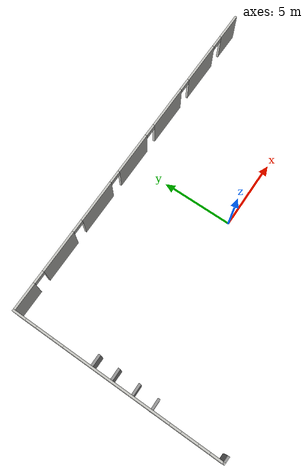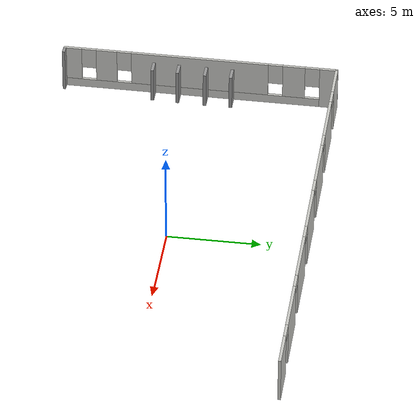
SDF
<sdf version="1.6">
 <model name="CV1_giardino2">
  <link name="Door_1">
   <pose>-12.2685 1.79069 0 0 -0 0</pose>
   <visual name="Door_1_Visual">
    <pose>0 0 1 0 -0 0</pose>
    <geometry><box><size>0.9 0.17 2</size></box></geometry>
    <material>
     <script><uri>file://media/materials/scripts/gazebo.material</uri><name>Gazebo/Grey</name></script>
     <ambient>0.3 0.3 0.3 1</ambient>
     <diffuse>0.7 0.7 0.7 1</diffuse>
     <specular>0.01 0.01 0.01 1</specular>
     <emissive>0 0 0 1</emissive>
    </material>
   </visual>
   <collision name="Door_1_Collision">
    <pose>0 0 1 0 -0 0</pose>
    <geometry><box><size>0.9 0.17 2</size></box></geometry>
    <surface>
     <friction>
      <ode><mu>1</mu><mu2>1</mu2><fdir1>0 0 0</fdir1><slip1>0</slip1><slip2>0</slip2></ode>
      <torsional>
       <coefficient>1</coefficient>
       <patch_radius>0</patch_radius>
       <surface_radius>0</surface_radius>
       <use_patch_radius>1</use_patch_radius>
       <ode><slip>0</slip></ode>
      </torsional>
     </friction>
     <bounce><restitution_coefficient>0</restitution_coefficient><threshold>1e+06</threshold></bounce>
     <contact>
      <collide_without_contact>0</collide_without_contact>
      <collide_without_contact_bitmask>1</collide_without_contact_bitmask>
      <collide_bitmask>1</collide_bitmask>
      <ode>
       <soft_cfm>0</soft_cfm>
       <soft_erp>0.2</soft_erp>
       <kp>1e+13</kp>
       <kd>1</kd>
       <max_vel>0.01</max_vel>
       <min_depth>0</min_depth>
      </ode>
      <bullet>
       <split_impulse>1</split_impulse>
       <split_impulse_penetration_threshold>-0.01</split_impulse_penetration_threshold>
       <soft_cfm>0</soft_cfm>
       <soft_erp>0.2</soft_erp>
       <kp>1e+13</kp>
       <kd>1</kd>
      </bullet>
     </contact>
    </surface>
   </collision>
  </link>
  <link name="Door_2">
   <pose>-12.2685 0.359125 0 0 -0 0</pose>
   <visual name="Door_2_Visual">
    <pose>0 0 1 0 -0 0</pose>
    <geometry><box><size>0.9 0.17 2</size></box></geometry>
    <material>
     <script><uri>file://media/materials/scripts/gazebo.material</uri><name>Gazebo/Grey</name></script>
     <ambient>0.3 0.3 0.3 1</ambient>
     <diffuse>0.7 0.7 0.7 1</diffuse>
     <specular>0.01 0.01 0.01 1</specular>
     <emissive>0 0 0 1</emissive>
    </material>
   </visual>
   <collision name="Door_2_Collision">
    <pose>0 0 1 0 -0 0</pose>
    <geometry><box><size>0.9 0.17 2</size></box></geometry>
    <surface>
     <friction>
      <ode><mu>1</mu><mu2>1</mu2><fdir1>0 0 0</fdir1><slip1>0</slip1><slip2>0</slip2></ode>
      <torsional>
       <coefficient>1</coefficient>
       <patch_radius>0</patch_radius>
       <surface_radius>0</surface_radius>
       <use_patch_radius>1</use_patch_radius>
       <ode><slip>0</slip></ode>
      </torsional>
     </friction>
     <bounce><restitution_coefficient>0</restitution_coefficient><threshold>1e+06</threshold></bounce>
     <contact>
      <collide_without_contact>0</collide_without_contact>
      <collide_without_contact_bitmask>1</collide_without_contact_bitmask>
      <collide_bitmask>1</collide_bitmask>
      <ode>
       <soft_cfm>0</soft_cfm>
       <soft_erp>0.2</soft_erp>
       <kp>1e+13</kp>
       <kd>1</kd>
       <max_vel>0.01</max_vel>
       <min_depth>0</min_depth>
      </ode>
      <bullet>
       <split_impulse>1</split_impulse>
       <split_impulse_penetration_threshold>-0.01</split_impulse_penetration_threshold>
       <soft_cfm>0</soft_cfm>
       <soft_erp>0.2</soft_erp>
       <kp>1e+13</kp>
       <kd>1</kd>
      </bullet>
     </contact>
    </surface>
   </collision>
  </link>
  <link name="Door_3">
   <pose>-12.296 -1.14905 0 0 -0 0</pose>
   <visual name="Door_3_Visual">
    <pose>0 0 1 0 -0 0</pose>
    <geometry><box><size>0.9 0.17 2</size></box></geometry>
    <material>
     <script><uri>file://media/materials/scripts/gazebo.material</uri><name>Gazebo/Grey</name></script>
     <ambient>0.3 0.3 0.3 1</ambient>
     <diffuse>0.7 0.7 0.7 1</diffuse>
     <specular>0.01 0.01 0.01 1</specular>
     <emissive>0 0 0 1</emissive>
    </material>
   </visual>
   <collision name="Door_3_Collision">
    <pose>0 0 1 0 -0 0</pose>
    <geometry><box><size>0.9 0.17 2</size></box></geometry>
    <surface>
     <friction>
      <ode><mu>1</mu><mu2>1</mu2><fdir1>0 0 0</fdir1><slip1>0</slip1><slip2>0</slip2></ode>
      <torsional>
       <coefficient>1</coefficient>
       <patch_radius>0</patch_radius>
       <surface_radius>0</surface_radius>
       <use_patch_radius>1</use_patch_radius>
       <ode><slip>0</slip></ode>
      </torsional>
     </friction>
     <bounce><restitution_coefficient>0</restitution_coefficient><threshold>1e+06</threshold></bounce>
     <contact>
      <collide_without_contact>0</collide_without_contact>
      <collide_without_contact_bitmask>1</collide_without_contact_bitmask>
      <collide_bitmask>1</collide_bitmask>
      <ode>
       <soft_cfm>0</soft_cfm>
       <soft_erp>0.2</soft_erp>
       <kp>1e+13</kp>
       <kd>1</kd>
       <max_vel>0.01</max_vel>
       <min_depth>0</min_depth>
      </ode>
      <bullet>
       <split_impulse>1</split_impulse>
       <split_impulse_penetration_threshold>-0.01</split_impulse_penetration_threshold>
       <soft_cfm>0</soft_cfm>
       <soft_erp>0.2</soft_erp>
       <kp>1e+13</kp>
       <kd>1</kd>
      </bullet>
     </contact>
    </surface>
   </collision>
  </link>
  <link name="Door_4">
   <pose>-12.3517 -2.54114 0 0 -0 0</pose>
   <visual name="Door_4_Visual">
    <pose>0 0 1 0 -0 0</pose>
    <geometry><box><size>0.9 0.17 2</size></box></geometry>
    <material>
     <script><uri>file://media/materials/scripts/gazebo.material</uri><name>Gazebo/Grey</name></script>
     <ambient>0.3 0.3 0.3 1</ambient>
     <diffuse>0.7 0.7 0.7 1</diffuse>
     <specular>0.01 0.01 0.01 1</specular>
     <emissive>0 0 0 1</emissive>
    </material>
   </visual>
   <collision name="Door_4_Collision">
    <pose>0 0 1 0 -0 0</pose>
    <geometry><box><size>0.9 0.17 2</size></box></geometry>
    <surface>
     <friction>
      <ode><mu>1</mu><mu2>1</mu2><fdir1>0 0 0</fdir1><slip1>0</slip1><slip2>0</slip2></ode>
      <torsional>
       <coefficient>1</coefficient>
       <patch_radius>0</patch_radius>
       <surface_radius>0</surface_radius>
       <use_patch_radius>1</use_patch_radius>
       <ode><slip>0</slip></ode>
      </torsional>
     </friction>
     <bounce><restitution_coefficient>0</restitution_coefficient><threshold>1e+06</threshold></bounce>
     <contact>
      <collide_without_contact>0</collide_without_contact>
      <collide_without_contact_bitmask>1</collide_without_contact_bitmask>
      <collide_bitmask>1</collide_bitmask>
      <ode>
       <soft_cfm>0</soft_cfm>
       <soft_erp>0.2</soft_erp>
       <kp>1e+13</kp>
       <kd>1</kd>
       <max_vel>0.01</max_vel>
       <min_depth>0</min_depth>
      </ode>
      <bullet>
       <split_impulse>1</split_impulse>
       <split_impulse_penetration_threshold>-0.01</split_impulse_penetration_threshold>
       <soft_cfm>0</soft_cfm>
       <soft_erp>0.2</soft_erp>
       <kp>1e+13</kp>
       <kd>1</kd>
      </bullet>
     </contact>
    </surface>
   </collision>
  </link>
  <link name="Wall_0">
   <pose>-12.7005 0.009036 0 0 0 -1.57729</pose>
   <visual name="Wall_0_Visual_0">
    <pose>-7.07005 0 1.25 0 -0 0</pose>
    <geometry><box><size>0.999785 0.15 2.5</size></box></geometry>
    <material>
     <script><uri>file://media/materials/scripts/gazebo.material</uri><name>Gazebo/CeilingTiled</name></script>
     <ambient>1 1 1 1</ambient>
     <diffuse>1 1 1 1</diffuse>
     <specular>0 0 0 1</specular>
     <emissive>0 0 0 1</emissive>
    </material>
   </visual>
   <visual name="Wall_0_Visual_1">
    <pose>0.499892 0 0.25 0 -0 0</pose>
    <geometry><box><size>14.1401 0.15 0.5</size></box></geometry>
    <material>
     <script><uri>file://media/materials/scripts/gazebo.material</uri><name>Gazebo/CeilingTiled</name></script>
     <ambient>1 1 1 1</ambient>
     <diffuse>1 1 1 1</diffuse>
     <specular>0 0 0 1</specular>
     <emissive>0 0 0 1</emissive>
    </material>
   </visual>
   <visual name="Wall_0_Visual_2">
    <pose>-5.15824 0 1.5 0 -0 0</pose>
    <geometry><box><size>1.22384 0.15 2</size></box></geometry>
    <material>
     <script><uri>file://media/materials/scripts/gazebo.material</uri><name>Gazebo/CeilingTiled</name></script>
     <ambient>1 1 1 1</ambient>
     <diffuse>1 1 1 1</diffuse>
     <specular>0 0 0 1</specular>
     <emissive>0 0 0 1</emissive>
    </material>
   </visual>
   <visual name="Wall_0_Visual_3">
    <pose>0.034926 0 1.5 0 -0 0</pose>
    <geometry><box><size>7.56249 0.15 2</size></box></geometry>
    <material>
     <script><uri>file://media/materials/scripts/gazebo.material</uri><name>Gazebo/CeilingTiled</name></script>
     <ambient>1 1 1 1</ambient>
     <diffuse>1 1 1 1</diffuse>
     <specular>0 0 0 1</specular>
     <emissive>0 0 0 1</emissive>
    </material>
   </visual>
   <visual name="Wall_0_Visual_4">
    <pose>5.1919 0 1.5 0 -0 0</pose>
    <geometry><box><size>1.15146 0.15 2</size></box></geometry>
    <material>
     <script><uri>file://media/materials/scripts/gazebo.material</uri><name>Gazebo/CeilingTiled</name></script>
     <ambient>1 1 1 1</ambient>
     <diffuse>1 1 1 1</diffuse>
     <specular>0 0 0 1</specular>
     <emissive>0 0 0 1</emissive>
    </material>
   </visual>
   <visual name="Wall_0_Visual_5">
    <pose>7.06879 0 1.5 0 -0 0</pose>
    <geometry><box><size>1.00231 0.15 2</size></box></geometry>
    <material>
     <script><uri>file://media/materials/scripts/gazebo.material</uri><name>Gazebo/CeilingTiled</name></script>
     <ambient>1 1 1 1</ambient>
     <diffuse>1 1 1 1</diffuse>
     <specular>0 0 0 1</specular>
     <emissive>0 0 0 1</emissive>
    </material>
   </visual>
   <visual name="Wall_0_Visual_6">
    <pose>-6.17016 0 1.9 0 -0 0</pose>
    <geometry><box><size>0.8 0.15 1.2</size></box></geometry>
    <material>
     <script><uri>file://media/materials/scripts/gazebo.material</uri><name>Gazebo/CeilingTiled</name></script>
     <ambient>1 1 1 1</ambient>
     <diffuse>1 1 1 1</diffuse>
     <specular>0 0 0 1</specular>
     <emissive>0 0 0 1</emissive>
    </material>
   </visual>
   <visual name="Wall_0_Visual_7">
    <pose>-4.14632 0 1.9 0 -0 0</pose>
    <geometry><box><size>0.8 0.15 1.2</size></box></geometry>
    <material>
     <script><uri>file://media/materials/scripts/gazebo.material</uri><name>Gazebo/CeilingTiled</name></script>
     <ambient>1 1 1 1</ambient>
     <diffuse>1 1 1 1</diffuse>
     <specular>0 0 0 1</specular>
     <emissive>0 0 0 1</emissive>
    </material>
   </visual>
   <visual name="Wall_0_Visual_8">
    <pose>4.21617 0 1.9 0 -0 0</pose>
    <geometry><box><size>0.8 0.15 1.2</size></box></geometry>
    <material>
     <script><uri>file://media/materials/scripts/gazebo.material</uri><name>Gazebo/CeilingTiled</name></script>
     <ambient>1 1 1 1</ambient>
     <diffuse>1 1 1 1</diffuse>
     <specular>0 0 0 1</specular>
     <emissive>0 0 0 1</emissive>
    </material>
   </visual>
   <visual name="Wall_0_Visual_9">
    <pose>6.16763 0 1.9 0 -0 0</pose>
    <geometry><box><size>0.8 0.15 1.2</size></box></geometry>
    <material>
     <script><uri>file://media/materials/scripts/gazebo.material</uri><name>Gazebo/CeilingTiled</name></script>
     <ambient>1 1 1 1</ambient>
     <diffuse>1 1 1 1</diffuse>
     <specular>0 0 0 1</specular>
     <emissive>0 0 0 1</emissive>
    </material>
   </visual>
   <collision name="Wall_0_Collision_0">
    <pose>-7.07005 0 1.25 0 -0 0</pose>
    <geometry><box><size>0.999785 0.15 2.5</size></box></geometry>
    <surface>
     <friction>
      <ode><mu>1</mu><mu2>1</mu2><fdir1>0 0 0</fdir1><slip1>0</slip1><slip2>0</slip2></ode>
      <torsional>
       <coefficient>1</coefficient>
       <patch_radius>0</patch_radius>
       <surface_radius>0</surface_radius>
       <use_patch_radius>1</use_patch_radius>
       <ode><slip>0</slip></ode>
      </torsional>
     </friction>
     <bounce><restitution_coefficient>0</restitution_coefficient><threshold>1e+06</threshold></bounce>
     <contact>
      <collide_without_contact>0</collide_without_contact>
      <collide_without_contact_bitmask>1</collide_without_contact_bitmask>
      <collide_bitmask>1</collide_bitmask>
      <ode>
       <soft_cfm>0</soft_cfm>
       <soft_erp>0.2</soft_erp>
       <kp>1e+13</kp>
       <kd>1</kd>
       <max_vel>0.01</max_vel>
       <min_depth>0</min_depth>
      </ode>
      <bullet>
       <split_impulse>1</split_impulse>
       <split_impulse_penetration_threshold>-0.01</split_impulse_penetration_threshold>
       <soft_cfm>0</soft_cfm>
       <soft_erp>0.2</soft_erp>
       <kp>1e+13</kp>
       <kd>1</kd>
      </bullet>
     </contact>
    </surface>
   </collision>
   <collision name="Wall_0_Collision_1">
    <pose>0.499892 0 0.25 0 -0 0</pose>
    <geometry><box><size>14.1401 0.15 0.5</size></box></geometry>
    <surface>
     <friction>
      <ode><mu>1</mu><mu2>1</mu2><fdir1>0 0 0</fdir1><slip1>0</slip1><slip2>0</slip2></ode>
      <torsional>
       <coefficient>1</coefficient>
       <patch_radius>0</patch_radius>
       <surface_radius>0</surface_radius>
       <use_patch_radius>1</use_patch_radius>
       <ode><slip>0</slip></ode>
      </torsional>
     </friction>
     <bounce><restitution_coefficient>0</restitution_coefficient><threshold>1e+06</threshold></bounce>
     <contact>
      <collide_without_contact>0</collide_without_contact>
      <collide_without_contact_bitmask>1</collide_without_contact_bitmask>
      <collide_bitmask>1</collide_bitmask>
      <ode>
       <soft_cfm>0</soft_cfm>
       <soft_erp>0.2</soft_erp>
       <kp>1e+13</kp>
       <kd>1</kd>
       <max_vel>0.01</max_vel>
       <min_depth>0</min_depth>
      </ode>
      <bullet>
       <split_impulse>1</split_impulse>
       <split_impulse_penetration_threshold>-0.01</split_impulse_penetration_threshold>
       <soft_cfm>0</soft_cfm>
       <soft_erp>0.2</soft_erp>
       <kp>1e+13</kp>
       <kd>1</kd>
      </bullet>
     </contact>
    </surface>
   </collision>
   <collision name="Wall_0_Collision_2">
    <pose>-5.15824 0 1.5 0 -0 0</pose>
    <geometry><box><size>1.22384 0.15 2</size></box></geometry>
    <surface>
     <friction>
      <ode><mu>1</mu><mu2>1</mu2><fdir1>0 0 0</fdir1><slip1>0</slip1><slip2>0</slip2></ode>
      <torsional>
       <coefficient>1</coefficient>
       <patch_radius>0</patch_radius>
       <surface_radius>0</surface_radius>
       <use_patch_radius>1</use_patch_radius>
       <ode><slip>0</slip></ode>
      </torsional>
     </friction>
     <bounce><restitution_coefficient>0</restitution_coefficient><threshold>1e+06</threshold></bounce>
     <contact>
      <collide_without_contact>0</collide_without_contact>
      <collide_without_contact_bitmask>1</collide_without_contact_bitmask>
      <collide_bitmask>1</collide_bitmask>
      <ode>
       <soft_cfm>0</soft_cfm>
       <soft_erp>0.2</soft_erp>
       <kp>1e+13</kp>
       <kd>1</kd>
       <max_vel>0.01</max_vel>
       <min_depth>0</min_depth>
      </ode>
      <bullet>
       <split_impulse>1</split_impulse>
       <split_impulse_penetration_threshold>-0.01</split_impulse_penetration_threshold>
       <soft_cfm>0</soft_cfm>
       <soft_erp>0.2</soft_erp>
       <kp>1e+13</kp>
       <kd>1</kd>
      </bullet>
     </contact>
    </surface>
   </collision>
   <collision name="Wall_0_Collision_3">
    <pose>0.034926 0 1.5 0 -0 0</pose>
    <geometry><box><size>7.56249 0.15 2</size></box></geometry>
    <surface>
     <friction>
      <ode><mu>1</mu><mu2>1</mu2><fdir1>0 0 0</fdir1><slip1>0</slip1><slip2>0</slip2></ode>
      <torsional>
       <coefficient>1</coefficient>
       <patch_radius>0</patch_radius>
       <surface_radius>0</surface_radius>
       <use_patch_radius>1</use_patch_radius>
       <ode><slip>0</slip></ode>
      </torsional>
     </friction>
     <bounce><restitution_coefficient>0</restitution_coefficient><threshold>1e+06</threshold></bounce>
     <contact>
      <collide_without_contact>0</collide_without_contact>
      <collide_without_contact_bitmask>1</collide_without_contact_bitmask>
      <collide_bitmask>1</collide_bitmask>
      <ode>
       <soft_cfm>0</soft_cfm>
       <soft_erp>0.2</soft_erp>
       <kp>1e+13</kp>
       <kd>1</kd>
       <max_vel>0.01</max_vel>
       <min_depth>0</min_depth>
      </ode>
      <bullet>
       <split_impulse>1</split_impulse>
       <split_impulse_penetration_threshold>-0.01</split_impulse_penetration_threshold>
       <soft_cfm>0</soft_cfm>
       <soft_erp>0.2</soft_erp>
       <kp>1e+13</kp>
       <kd>1</kd>
      </bullet>
     </contact>
    </surface>
   </collision>
   <collision name="Wall_0_Collision_5">
    <pose>7.06879 0 1.5 0 -0 0</pose>
    <geometry><box><size>1.00231 0.15 2</size></box></geometry>
    <surface>
     <friction>
      <ode><mu>1</mu><mu2>1</mu2><fdir1>0 0 0</fdir1><slip1>0</slip1><slip2>0</slip2></ode>
      <torsional>
       <coefficient>1</coefficient>
       <patch_radius>0</patch_radius>
       <surface_radius>0</surface_radius>
       <use_patch_radius>1</use_patch_radius>
       <ode><slip>0</slip></ode>
      </torsional>
     </friction>
     <bounce><restitution_coefficient>0</restitution_coefficient><threshold>1e+06</threshold></bounce>
     <contact>
      <collide_without_contact>0</collide_without_contact>
      <collide_without_contact_bitmask>1</collide_without_contact_bitmask>
      <collide_bitmask>1</collide_bitmask>
      <ode>
       <soft_cfm>0</soft_cfm>
       <soft_erp>0.2</soft_erp>
       <kp>1e+13</kp>
       <kd>1</kd>
       <max_vel>0.01</max_vel>
       <min_depth>0</min_depth>
      </ode>
      <bullet>
       <split_impulse>1</split_impulse>
       <split_impulse_penetration_threshold>-0.01</split_impulse_penetration_threshold>
       <soft_cfm>0</soft_cfm>
       <soft_erp>0.2</soft_erp>
       <kp>1e+13</kp>
       <kd>1</kd>
      </bullet>
     </contact>
    </surface>
   </collision>
   <collision name="Wall_0_Collision_4">
    <pose>5.1919 0 1.5 0 -0 0</pose>
    <geometry><box><size>1.15146 0.15 2</size></box></geometry>
    <surface>
     <friction>
      <ode><mu>1</mu><mu2>1</mu2><fdir1>0 0 0</fdir1><slip1>0</slip1><slip2>0</slip2></ode>
      <torsional>
       <coefficient>1</coefficient>
       <patch_radius>0</patch_radius>
       <surface_radius>0</surface_radius>
       <use_patch_radius>1</use_patch_radius>
       <ode><slip>0</slip></ode>
      </torsional>
     </friction>
     <bounce><restitution_coefficient>0</restitution_coefficient><threshold>1e+06</threshold></bounce>
     <contact>
      <collide_without_contact>0</collide_without_contact>
      <collide_without_contact_bitmask>1</collide_without_contact_bitmask>
      <collide_bitmask>1</collide_bitmask>
      <ode>
       <soft_cfm>0</soft_cfm>
       <soft_erp>0.2</soft_erp>
       <kp>1e+13</kp>
       <kd>1</kd>
       <max_vel>0.01</max_vel>
       <min_depth>0</min_depth>
      </ode>
      <bullet>
       <split_impulse>1</split_impulse>
       <split_impulse_penetration_threshold>-0.01</split_impulse_penetration_threshold>
       <soft_cfm>0</soft_cfm>
       <soft_erp>0.2</soft_erp>
       <kp>1e+13</kp>
       <kd>1</kd>
      </bullet>
     </contact>
    </surface>
   </collision>
   <collision name="Wall_0_Collision_6">
    <pose>-6.17016 0 1.9 0 -0 0</pose>
    <geometry><box><size>0.8 0.15 1.2</size></box></geometry>
    <surface>
     <friction>
      <ode><mu>1</mu><mu2>1</mu2><fdir1>0 0 0</fdir1><slip1>0</slip1><slip2>0</slip2></ode>
      <torsional>
       <coefficient>1</coefficient>
       <patch_radius>0</patch_radius>
       <surface_radius>0</surface_radius>
       <use_patch_radius>1</use_patch_radius>
       <ode><slip>0</slip></ode>
      </torsional>
     </friction>
     <bounce><restitution_coefficient>0</restitution_coefficient><threshold>1e+06</threshold></bounce>
     <contact>
      <collide_without_contact>0</collide_without_contact>
      <collide_without_contact_bitmask>1</collide_without_contact_bitmask>
      <collide_bitmask>1</collide_bitmask>
      <ode>
       <soft_cfm>0</soft_cfm>
       <soft_erp>0.2</soft_erp>
       <kp>1e+13</kp>
       <kd>1</kd>
       <max_vel>0.01</max_vel>
       <min_depth>0</min_depth>
      </ode>
      <bullet>
       <split_impulse>1</split_impulse>
       <split_impulse_penetration_threshold>-0.01</split_impulse_penetration_threshold>
       <soft_cfm>0</soft_cfm>
       <soft_erp>0.2</soft_erp>
       <kp>1e+13</kp>
       <kd>1</kd>
      </bullet>
     </contact>
    </surface>
   </collision>
   <collision name="Wall_0_Collision_7">
    <pose>-4.14632 0 1.9 0 -0 0</pose>
    <geometry><box><size>0.8 0.15 1.2</size></box></geometry>
    <surface>
     <friction>
      <ode><mu>1</mu><mu2>1</mu2><fdir1>0 0 0</fdir1><slip1>0</slip1><slip2>0</slip2></ode>
      <torsional>
       <coefficient>1</coefficient>
       <patch_radius>0</patch_radius>
       <surface_radius>0</surface_radius>
       <use_patch_radius>1</use_patch_radius>
       <ode><slip>0</slip></ode>
      </torsional>
     </friction>
     <bounce><restitution_coefficient>0</restitution_coefficient><threshold>1e+06</threshold></bounce>
     <contact>
      <collide_without_contact>0</collide_without_contact>
      <collide_without_contact_bitmask>1</collide_without_contact_bitmask>
      <collide_bitmask>1</collide_bitmask>
      <ode>
       <soft_cfm>0</soft_cfm>
       <soft_erp>0.2</soft_erp>
       <kp>1e+13</kp>
       <kd>1</kd>
       <max_vel>0.01</max_vel>
       <min_depth>0</min_depth>
      </ode>
      <bullet>
       <split_impulse>1</split_impulse>
       <split_impulse_penetration_threshold>-0.01</split_impulse_penetration_threshold>
       <soft_cfm>0</soft_cfm>
       <soft_erp>0.2</soft_erp>
       <kp>1e+13</kp>
       <kd>1</kd>
      </bullet>
     </contact>
    </surface>
   </collision>
   <collision name="Wall_0_Collision_9">
    <pose>6.16763 0 1.9 0 -0 0</pose>
    <geometry><box><size>0.8 0.15 1.2</size></box></geometry>
    <surface>
     <friction>
      <ode><mu>1</mu><mu2>1</mu2><fdir1>0 0 0</fdir1><slip1>0</slip1><slip2>0</slip2></ode>
      <torsional>
       <coefficient>1</coefficient>
       <patch_radius>0</patch_radius>
       <surface_radius>0</surface_radius>
       <use_patch_radius>1</use_patch_radius>
       <ode><slip>0</slip></ode>
      </torsional>
     </friction>
     <bounce><restitution_coefficient>0</restitution_coefficient><threshold>1e+06</threshold></bounce>
     <contact>
      <collide_without_contact>0</collide_without_contact>
      <collide_without_contact_bitmask>1</collide_without_contact_bitmask>
      <collide_bitmask>1</collide_bitmask>
      <ode>
       <soft_cfm>0</soft_cfm>
       <soft_erp>0.2</soft_erp>
       <kp>1e+13</kp>
       <kd>1</kd>
       <max_vel>0.01</max_vel>
       <min_depth>0</min_depth>
      </ode>
      <bullet>
       <split_impulse>1</split_impulse>
       <split_impulse_penetration_threshold>-0.01</split_impulse_penetration_threshold>
       <soft_cfm>0</soft_cfm>
       <soft_erp>0.2</soft_erp>
       <kp>1e+13</kp>
       <kd>1</kd>
      </bullet>
     </contact>
    </surface>
   </collision>
   <collision name="Wall_0_Collision_8">
    <pose>4.21617 0 1.9 0 -0 0</pose>
    <geometry><box><size>0.8 0.15 1.2</size></box></geometry>
    <surface>
     <friction>
      <ode><mu>1</mu><mu2>1</mu2><fdir1>0 0 0</fdir1><slip1>0</slip1><slip2>0</slip2></ode>
      <torsional>
       <coefficient>1</coefficient>
       <patch_radius>0</patch_radius>
       <surface_radius>0</surface_radius>
       <use_patch_radius>1</use_patch_radius>
       <ode><slip>0</slip></ode>
      </torsional>
     </friction>
     <bounce><restitution_coefficient>0</restitution_coefficient><threshold>1e+06</threshold></bounce>
     <contact>
      <collide_without_contact>0</collide_without_contact>
      <collide_without_contact_bitmask>1</collide_without_contact_bitmask>
      <collide_bitmask>1</collide_bitmask>
      <ode>
       <soft_cfm>0</soft_cfm>
       <soft_erp>0.2</soft_erp>
       <kp>1e+13</kp>
       <kd>1</kd>
       <max_vel>0.01</max_vel>
       <min_depth>0</min_depth>
      </ode>
      <bullet>
       <split_impulse>1</split_impulse>
       <split_impulse_penetration_threshold>-0.01</split_impulse_penetration_threshold>
       <soft_cfm>0</soft_cfm>
       <soft_erp>0.2</soft_erp>
       <kp>1e+13</kp>
       <kd>1</kd>
      </bullet>
     </contact>
    </surface>
   </collision>
  </link>
  <link name="Wall_10">
   <pose>-12.5486 -7.49359 0 0 -0 3.10252</pose>
   <visual name="Wall_10_Visual">
    <pose>0 0 1.25 0 -0 0</pose>
    <geometry><box><size>0.551485 0.15 2.5</size></box></geometry>
    <material>
     <script><uri>file://media/materials/scripts/gazebo.material</uri><name>Gazebo/Grey</name></script>
     <ambient>1 1 1 1</ambient>
     <diffuse>0.7 0.7 0.7 1</diffuse>
     <specular>0.01 0.01 0.01 1</specular>
     <emissive>0 0 0 1</emissive>
    </material>
   </visual>
   <collision name="Wall_10_Collision">
    <pose>0 0 1.25 0 -0 0</pose>
    <geometry><box><size>0.551485 0.15 2.5</size></box></geometry>
    <surface>
     <friction>
      <ode><mu>1</mu><mu2>1</mu2><fdir1>0 0 0</fdir1><slip1>0</slip1><slip2>0</slip2></ode>
      <torsional>
       <coefficient>1</coefficient>
       <patch_radius>0</patch_radius>
       <surface_radius>0</surface_radius>
       <use_patch_radius>1</use_patch_radius>
       <ode><slip>0</slip></ode>
      </torsional>
     </friction>
     <bounce><restitution_coefficient>0</restitution_coefficient><threshold>1e+06</threshold></bounce>
     <contact>
      <collide_without_contact>0</collide_without_contact>
      <collide_without_contact_bitmask>1</collide_without_contact_bitmask>
      <collide_bitmask>1</collide_bitmask>
      <ode>
       <soft_cfm>0</soft_cfm>
       <soft_erp>0.2</soft_erp>
       <kp>1e+13</kp>
       <kd>1</kd>
       <max_vel>0.01</max_vel>
       <min_depth>0</min_depth>
      </ode>
      <bullet>
       <split_impulse>1</split_impulse>
       <split_impulse_penetration_threshold>-0.01</split_impulse_penetration_threshold>
       <soft_cfm>0</soft_cfm>
       <soft_erp>0.2</soft_erp>
       <kp>1e+13</kp>
       <kd>1</kd>
      </bullet>
     </contact>
    </surface>
   </collision>
  </link>
  <link name="Wall_4">
   <pose>-0.226762 7.50382 0 0 -0 0</pose>
   <visual name="Wall_4_Visual_0">
    <pose>-11.4576 0 1.25 0 -0 0</pose>
    <geometry><box><size>2.08487 0.15 2.5</size></box></geometry>
    <material>
     <script><uri>file://media/materials/scripts/gazebo.material</uri><name>Gazebo/CeilingTiled</name></script>
     <ambient>1 1 1 1</ambient>
     <diffuse>1 1 1 1</diffuse>
     <specular>0 0 0 1</specular>
     <emissive>0 0 0 1</emissive>
    </material>
   </visual>
   <visual name="Wall_4_Visual_1">
    <pose>-7.98803 0 1.25 0 -0 0</pose>
    <geometry><box><size>3.0542 0.15 2.5</size></box></geometry>
    <material>
     <script><uri>file://media/materials/scripts/gazebo.material</uri><name>Gazebo/CeilingTiled</name></script>
     <ambient>1 1 1 1</ambient>
     <diffuse>1 1 1 1</diffuse>
     <specular>0 0 0 1</specular>
     <emissive>0 0 0 1</emissive>
    </material>
   </visual>
   <visual name="Wall_4_Visual_3">
    <pose>-0.033855 0 1.25 0 -0 0</pose>
    <geometry><box><size>3.07251 0.15 2.5</size></box></geometry>
    <material>
     <script><uri>file://media/materials/scripts/gazebo.material</uri><name>Gazebo/CeilingTiled</name></script>
     <ambient>1 1 1 1</ambient>
     <diffuse>1 1 1 1</diffuse>
     <specular>0 0 0 1</specular>
     <emissive>0 0 0 1</emissive>
    </material>
   </visual>
   <visual name="Wall_4_Visual_2">
    <pose>-4.01552 0 1.25 0 -0 0</pose>
    <geometry><box><size>3.09082 0.15 2.5</size></box></geometry>
    <material>
     <script><uri>file://media/materials/scripts/gazebo.material</uri><name>Gazebo/CeilingTiled</name></script>
     <ambient>1 1 1 1</ambient>
     <diffuse>1 1 1 1</diffuse>
     <specular>0 0 0 1</specular>
     <emissive>0 0 0 1</emissive>
    </material>
   </visual>
   <visual name="Wall_4_Visual_4">
    <pose>3.99357 0 1.25 0 -0 0</pose>
    <geometry><box><size>3.18235 0.15 2.5</size></box></geometry>
    <material>
     <script><uri>file://media/materials/scripts/gazebo.material</uri><name>Gazebo/CeilingTiled</name></script>
     <ambient>1 1 1 1</ambient>
     <diffuse>1 1 1 1</diffuse>
     <specular>0 0 0 1</specular>
     <emissive>0 0 0 1</emissive>
    </material>
   </visual>
   <visual name="Wall_4_Visual_5">
    <pose>8.04288 0 1.25 0 -0 0</pose>
    <geometry><box><size>3.11626 0.15 2.5</size></box></geometry>
    <material>
     <script><uri>file://media/materials/scripts/gazebo.material</uri><name>Gazebo/CeilingTiled</name></script>
     <ambient>1 1 1 1</ambient>
     <diffuse>1 1 1 1</diffuse>
     <specular>0 0 0 1</specular>
     <emissive>0 0 0 1</emissive>
    </material>
   </visual>
   <visual name="Wall_4_Visual_6">
    <pose>11.5005 0 1.25 0 -0 0</pose>
    <geometry><box><size>1.99899 0.15 2.5</size></box></geometry>
    <material>
     <script><uri>file://media/materials/scripts/gazebo.material</uri><name>Gazebo/CeilingTiled</name></script>
     <ambient>1 1 1 1</ambient>
     <diffuse>1 1 1 1</diffuse>
     <specular>0 0 0 1</specular>
     <emissive>0 0 0 1</emissive>
    </material>
   </visual>
   <visual name="Wall_4_Visual_7">
    <pose>-9.96513 0 2.25 0 -0 0</pose>
    <geometry><box><size>0.9 0.15 0.5</size></box></geometry>
    <material>
     <script><uri>file://media/materials/scripts/gazebo.material</uri><name>Gazebo/CeilingTiled</name></script>
     <ambient>1 1 1 1</ambient>
     <diffuse>1 1 1 1</diffuse>
     <specular>0 0 0 1</specular>
     <emissive>0 0 0 1</emissive>
    </material>
   </visual>
   <visual name="Wall_4_Visual_8">
    <pose>-6.01093 0 2.25 0 -0 0</pose>
    <geometry><box><size>0.9 0.15 0.5</size></box></geometry>
    <material>
     <script><uri>file://media/materials/scripts/gazebo.material</uri><name>Gazebo/CeilingTiled</name></script>
     <ambient>1 1 1 1</ambient>
     <diffuse>1 1 1 1</diffuse>
     <specular>0 0 0 1</specular>
     <emissive>0 0 0 1</emissive>
    </material>
   </visual>
   <visual name="Wall_4_Visual_9">
    <pose>-2.02011 0 2.25 0 -0 0</pose>
    <geometry><box><size>0.9 0.15 0.5</size></box></geometry>
    <material>
     <script><uri>file://media/materials/scripts/gazebo.material</uri><name>Gazebo/CeilingTiled</name></script>
     <ambient>1 1 1 1</ambient>
     <diffuse>1 1 1 1</diffuse>
     <specular>0 0 0 1</specular>
     <emissive>0 0 0 1</emissive>
    </material>
   </visual>
   <visual name="Wall_4_Visual_11">
    <pose>6.03475 0 2.25 0 -0 0</pose>
    <geometry><box><size>0.9 0.15 0.5</size></box></geometry>
    <material>
     <script><uri>file://media/materials/scripts/gazebo.material</uri><name>Gazebo/CeilingTiled</name></script>
     <ambient>1 1 1 1</ambient>
     <diffuse>1 1 1 1</diffuse>
     <specular>0 0 0 1</specular>
     <emissive>0 0 0 1</emissive>
    </material>
   </visual>
   <visual name="Wall_4_Visual_10">
    <pose>1.9524 0 2.25 0 -0 0</pose>
    <geometry><box><size>0.9 0.15 0.5</size></box></geometry>
    <material>
     <script><uri>file://media/materials/scripts/gazebo.material</uri><name>Gazebo/CeilingTiled</name></script>
     <ambient>1 1 1 1</ambient>
     <diffuse>1 1 1 1</diffuse>
     <specular>0 0 0 1</specular>
     <emissive>0 0 0 1</emissive>
    </material>
   </visual>
   <visual name="Wall_4_Visual_12">
    <pose>10.051 0 2.25 0 -0 0</pose>
    <geometry><box><size>0.9 0.15 0.5</size></box></geometry>
    <material>
     <script><uri>file://media/materials/scripts/gazebo.material</uri><name>Gazebo/CeilingTiled</name></script>
     <ambient>1 1 1 1</ambient>
     <diffuse>1 1 1 1</diffuse>
     <specular>0 0 0 1</specular>
     <emissive>0 0 0 1</emissive>
    </material>
   </visual>
   <collision name="Wall_4_Collision_11">
    <pose>6.03475 0 2.25 0 -0 0</pose>
    <geometry><box><size>0.9 0.15 0.5</size></box></geometry>
    <surface>
     <friction>
      <ode><mu>1</mu><mu2>1</mu2><fdir1>0 0 0</fdir1><slip1>0</slip1><slip2>0</slip2></ode>
      <torsional>
       <coefficient>1</coefficient>
       <patch_radius>0</patch_radius>
       <surface_radius>0</surface_radius>
       <use_patch_radius>1</use_patch_radius>
       <ode><slip>0</slip></ode>
      </torsional>
     </friction>
     <bounce><restitution_coefficient>0</restitution_coefficient><threshold>1e+06</threshold></bounce>
     <contact>
      <collide_without_contact>0</collide_without_contact>
      <collide_without_contact_bitmask>1</collide_without_contact_bitmask>
      <collide_bitmask>1</collide_bitmask>
      <ode>
       <soft_cfm>0</soft_cfm>
       <soft_erp>0.2</soft_erp>
       <kp>1e+13</kp>
       <kd>1</kd>
       <max_vel>0.01</max_vel>
       <min_depth>0</min_depth>
      </ode>
      <bullet>
       <split_impulse>1</split_impulse>
       <split_impulse_penetration_threshold>-0.01</split_impulse_penetration_threshold>
       <soft_cfm>0</soft_cfm>
       <soft_erp>0.2</soft_erp>
       <kp>1e+13</kp>
       <kd>1</kd>
      </bullet>
     </contact>
    </surface>
   </collision>
   <collision name="Wall_4_Collision_0">
    <pose>-11.4576 0 1.25 0 -0 0</pose>
    <geometry><box><size>2.08487 0.15 2.5</size></box></geometry>
    <surface>
     <friction>
      <ode><mu>1</mu><mu2>1</mu2><fdir1>0 0 0</fdir1><slip1>0</slip1><slip2>0</slip2></ode>
      <torsional>
       <coefficient>1</coefficient>
       <patch_radius>0</patch_radius>
       <surface_radius>0</surface_radius>
       <use_patch_radius>1</use_patch_radius>
       <ode><slip>0</slip></ode>
      </torsional>
     </friction>
     <bounce><restitution_coefficient>0</restitution_coefficient><threshold>1e+06</threshold></bounce>
     <contact>
      <collide_without_contact>0</collide_without_contact>
      <collide_without_contact_bitmask>1</collide_without_contact_bitmask>
      <collide_bitmask>1</collide_bitmask>
      <ode>
       <soft_cfm>0</soft_cfm>
       <soft_erp>0.2</soft_erp>
       <kp>1e+13</kp>
       <kd>1</kd>
       <max_vel>0.01</max_vel>
       <min_depth>0</min_depth>
      </ode>
      <bullet>
       <split_impulse>1</split_impulse>
       <split_impulse_penetration_threshold>-0.01</split_impulse_penetration_threshold>
       <soft_cfm>0</soft_cfm>
       <soft_erp>0.2</soft_erp>
       <kp>1e+13</kp>
       <kd>1</kd>
      </bullet>
     </contact>
    </surface>
   </collision>
   <collision name="Wall_4_Collision_1">
    <pose>-7.98803 0 1.25 0 -0 0</pose>
    <geometry><box><size>3.0542 0.15 2.5</size></box></geometry>
    <surface>
     <friction>
      <ode><mu>1</mu><mu2>1</mu2><fdir1>0 0 0</fdir1><slip1>0</slip1><slip2>0</slip2></ode>
      <torsional>
       <coefficient>1</coefficient>
       <patch_radius>0</patch_radius>
       <surface_radius>0</surface_radius>
       <use_patch_radius>1</use_patch_radius>
       <ode><slip>0</slip></ode>
      </torsional>
     </friction>
     <bounce><restitution_coefficient>0</restitution_coefficient><threshold>1e+06</threshold></bounce>
     <contact>
      <collide_without_contact>0</collide_without_contact>
      <collide_without_contact_bitmask>1</collide_without_contact_bitmask>
      <collide_bitmask>1</collide_bitmask>
      <ode>
       <soft_cfm>0</soft_cfm>
       <soft_erp>0.2</soft_erp>
       <kp>1e+13</kp>
       <kd>1</kd>
       <max_vel>0.01</max_vel>
       <min_depth>0</min_depth>
      </ode>
      <bullet>
       <split_impulse>1</split_impulse>
       <split_impulse_penetration_threshold>-0.01</split_impulse_penetration_threshold>
       <soft_cfm>0</soft_cfm>
       <soft_erp>0.2</soft_erp>
       <kp>1e+13</kp>
       <kd>1</kd>
      </bullet>
     </contact>
    </surface>
   </collision>
   <collision name="Wall_4_Collision_2">
    <pose>-4.01552 0 1.25 0 -0 0</pose>
    <geometry><box><size>3.09082 0.15 2.5</size></box></geometry>
    <surface>
     <friction>
      <ode><mu>1</mu><mu2>1</mu2><fdir1>0 0 0</fdir1><slip1>0</slip1><slip2>0</slip2></ode>
      <torsional>
       <coefficient>1</coefficient>
       <patch_radius>0</patch_radius>
       <surface_radius>0</surface_radius>
       <use_patch_radius>1</use_patch_radius>
       <ode><slip>0</slip></ode>
      </torsional>
     </friction>
     <bounce><restitution_coefficient>0</restitution_coefficient><threshold>1e+06</threshold></bounce>
     <contact>
      <collide_without_contact>0</collide_without_contact>
      <collide_without_contact_bitmask>1</collide_without_contact_bitmask>
      <collide_bitmask>1</collide_bitmask>
      <ode>
       <soft_cfm>0</soft_cfm>
       <soft_erp>0.2</soft_erp>
       <kp>1e+13</kp>
       <kd>1</kd>
       <max_vel>0.01</max_vel>
       <min_depth>0</min_depth>
      </ode>
      <bullet>
       <split_impulse>1</split_impulse>
       <split_impulse_penetration_threshold>-0.01</split_impulse_penetration_threshold>
       <soft_cfm>0</soft_cfm>
       <soft_erp>0.2</soft_erp>
       <kp>1e+13</kp>
       <kd>1</kd>
      </bullet>
     </contact>
    </surface>
   </collision>
   <collision name="Wall_4_Collision_3">
    <pose>-0.033855 0 1.25 0 -0 0</pose>
    <geometry><box><size>3.07251 0.15 2.5</size></box></geometry>
    <surface>
     <friction>
      <ode><mu>1</mu><mu2>1</mu2><fdir1>0 0 0</fdir1><slip1>0</slip1><slip2>0</slip2></ode>
      <torsional>
       <coefficient>1</coefficient>
       <patch_radius>0</patch_radius>
       <surface_radius>0</surface_radius>
       <use_patch_radius>1</use_patch_radius>
       <ode><slip>0</slip></ode>
      </torsional>
     </friction>
     <bounce><restitution_coefficient>0</restitution_coefficient><threshold>1e+06</threshold></bounce>
     <contact>
      <collide_without_contact>0</collide_without_contact>
      <collide_without_contact_bitmask>1</collide_without_contact_bitmask>
      <collide_bitmask>1</collide_bitmask>
      <ode>
       <soft_cfm>0</soft_cfm>
       <soft_erp>0.2</soft_erp>
       <kp>1e+13</kp>
       <kd>1</kd>
       <max_vel>0.01</max_vel>
       <min_depth>0</min_depth>
      </ode>
      <bullet>
       <split_impulse>1</split_impulse>
       <split_impulse_penetration_threshold>-0.01</split_impulse_penetration_threshold>
       <soft_cfm>0</soft_cfm>
       <soft_erp>0.2</soft_erp>
       <kp>1e+13</kp>
       <kd>1</kd>
      </bullet>
     </contact>
    </surface>
   </collision>
   <collision name="Wall_4_Collision_4">
    <pose>3.99357 0 1.25 0 -0 0</pose>
    <geometry><box><size>3.18235 0.15 2.5</size></box></geometry>
    <surface>
     <friction>
      <ode><mu>1</mu><mu2>1</mu2><fdir1>0 0 0</fdir1><slip1>0</slip1><slip2>0</slip2></ode>
      <torsional>
       <coefficient>1</coefficient>
       <patch_radius>0</patch_radius>
       <surface_radius>0</surface_radius>
       <use_patch_radius>1</use_patch_radius>
       <ode><slip>0</slip></ode>
      </torsional>
     </friction>
     <bounce><restitution_coefficient>0</restitution_coefficient><threshold>1e+06</threshold></bounce>
     <contact>
      <collide_without_contact>0</collide_without_contact>
      <collide_without_contact_bitmask>1</collide_without_contact_bitmask>
      <collide_bitmask>1</collide_bitmask>
      <ode>
       <soft_cfm>0</soft_cfm>
       <soft_erp>0.2</soft_erp>
       <kp>1e+13</kp>
       <kd>1</kd>
       <max_vel>0.01</max_vel>
       <min_depth>0</min_depth>
      </ode>
      <bullet>
       <split_impulse>1</split_impulse>
       <split_impulse_penetration_threshold>-0.01</split_impulse_penetration_threshold>
       <soft_cfm>0</soft_cfm>
       <soft_erp>0.2</soft_erp>
       <kp>1e+13</kp>
       <kd>1</kd>
      </bullet>
     </contact>
    </surface>
   </collision>
   <collision name="Wall_4_Collision_5">
    <pose>8.04288 0 1.25 0 -0 0</pose>
    <geometry><box><size>3.11626 0.15 2.5</size></box></geometry>
    <surface>
     <friction>
      <ode><mu>1</mu><mu2>1</mu2><fdir1>0 0 0</fdir1><slip1>0</slip1><slip2>0</slip2></ode>
      <torsional>
       <coefficient>1</coefficient>
       <patch_radius>0</patch_radius>
       <surface_radius>0</surface_radius>
       <use_patch_radius>1</use_patch_radius>
       <ode><slip>0</slip></ode>
      </torsional>
     </friction>
     <bounce><restitution_coefficient>0</restitution_coefficient><threshold>1e+06</threshold></bounce>
     <contact>
      <collide_without_contact>0</collide_without_contact>
      <collide_without_contact_bitmask>1</collide_without_contact_bitmask>
      <collide_bitmask>1</collide_bitmask>
      <ode>
       <soft_cfm>0</soft_cfm>
       <soft_erp>0.2</soft_erp>
       <kp>1e+13</kp>
       <kd>1</kd>
       <max_vel>0.01</max_vel>
       <min_depth>0</min_depth>
      </ode>
      <bullet>
       <split_impulse>1</split_impulse>
       <split_impulse_penetration_threshold>-0.01</split_impulse_penetration_threshold>
       <soft_cfm>0</soft_cfm>
       <soft_erp>0.2</soft_erp>
       <kp>1e+13</kp>
       <kd>1</kd>
      </bullet>
     </contact>
    </surface>
   </collision>
   <collision name="Wall_4_Collision_7">
    <pose>-9.96513 0 2.25 0 -0 0</pose>
    <geometry><box><size>0.9 0.15 0.5</size></box></geometry>
    <surface>
     <friction>
      <ode><mu>1</mu><mu2>1</mu2><fdir1>0 0 0</fdir1><slip1>0</slip1><slip2>0</slip2></ode>
      <torsional>
       <coefficient>1</coefficient>
       <patch_radius>0</patch_radius>
       <surface_radius>0</surface_radius>
       <use_patch_radius>1</use_patch_radius>
       <ode><slip>0</slip></ode>
      </torsional>
     </friction>
     <bounce><restitution_coefficient>0</restitution_coefficient><threshold>1e+06</threshold></bounce>
     <contact>
      <collide_without_contact>0</collide_without_contact>
      <collide_without_contact_bitmask>1</collide_without_contact_bitmask>
      <collide_bitmask>1</collide_bitmask>
      <ode>
       <soft_cfm>0</soft_cfm>
       <soft_erp>0.2</soft_erp>
       <kp>1e+13</kp>
       <kd>1</kd>
       <max_vel>0.01</max_vel>
       <min_depth>0</min_depth>
      </ode>
      <bullet>
       <split_impulse>1</split_impulse>
       <split_impulse_penetration_threshold>-0.01</split_impulse_penetration_threshold>
       <soft_cfm>0</soft_cfm>
       <soft_erp>0.2</soft_erp>
       <kp>1e+13</kp>
       <kd>1</kd>
      </bullet>
     </contact>
    </surface>
   </collision>
   <collision name="Wall_4_Collision_9">
    <pose>-2.02011 0 2.25 0 -0 0</pose>
    <geometry><box><size>0.9 0.15 0.5</size></box></geometry>
    <surface>
     <friction>
      <ode><mu>1</mu><mu2>1</mu2><fdir1>0 0 0</fdir1><slip1>0</slip1><slip2>0</slip2></ode>
      <torsional>
       <coefficient>1</coefficient>
       <patch_radius>0</patch_radius>
       <surface_radius>0</surface_radius>
       <use_patch_radius>1</use_patch_radius>
       <ode><slip>0</slip></ode>
      </torsional>
     </friction>
     <bounce><restitution_coefficient>0</restitution_coefficient><threshold>1e+06</threshold></bounce>
     <contact>
      <collide_without_contact>0</collide_without_contact>
      <collide_without_contact_bitmask>1</collide_without_contact_bitmask>
      <collide_bitmask>1</collide_bitmask>
      <ode>
       <soft_cfm>0</soft_cfm>
       <soft_erp>0.2</soft_erp>
       <kp>1e+13</kp>
       <kd>1</kd>
       <max_vel>0.01</max_vel>
       <min_depth>0</min_depth>
      </ode>
      <bullet>
       <split_impulse>1</split_impulse>
       <split_impulse_penetration_threshold>-0.01</split_impulse_penetration_threshold>
       <soft_cfm>0</soft_cfm>
       <soft_erp>0.2</soft_erp>
       <kp>1e+13</kp>
       <kd>1</kd>
      </bullet>
     </contact>
    </surface>
   </collision>
   <collision name="Wall_4_Collision_6">
    <pose>11.5005 0 1.25 0 -0 0</pose>
    <geometry><box><size>1.99899 0.15 2.5</size></box></geometry>
    <surface>
     <friction>
      <ode><mu>1</mu><mu2>1</mu2><fdir1>0 0 0</fdir1><slip1>0</slip1><slip2>0</slip2></ode>
      <torsional>
       <coefficient>1</coefficient>
       <patch_radius>0</patch_radius>
       <surface_radius>0</surface_radius>
       <use_patch_radius>1</use_patch_radius>
       <ode><slip>0</slip></ode>
      </torsional>
     </friction>
     <bounce><restitution_coefficient>0</restitution_coefficient><threshold>1e+06</threshold></bounce>
     <contact>
      <collide_without_contact>0</collide_without_contact>
      <collide_without_contact_bitmask>1</collide_without_contact_bitmask>
      <collide_bitmask>1</collide_bitmask>
      <ode>
       <soft_cfm>0</soft_cfm>
       <soft_erp>0.2</soft_erp>
       <kp>1e+13</kp>
       <kd>1</kd>
       <max_vel>0.01</max_vel>
       <min_depth>0</min_depth>
      </ode>
      <bullet>
       <split_impulse>1</split_impulse>
       <split_impulse_penetration_threshold>-0.01</split_impulse_penetration_threshold>
       <soft_cfm>0</soft_cfm>
       <soft_erp>0.2</soft_erp>
       <kp>1e+13</kp>
       <kd>1</kd>
      </bullet>
     </contact>
    </surface>
   </collision>
   <collision name="Wall_4_Collision_8">
    <pose>-6.01093 0 2.25 0 -0 0</pose>
    <geometry><box><size>0.9 0.15 0.5</size></box></geometry>
    <surface>
     <friction>
      <ode><mu>1</mu><mu2>1</mu2><fdir1>0 0 0</fdir1><slip1>0</slip1><slip2>0</slip2></ode>
      <torsional>
       <coefficient>1</coefficient>
       <patch_radius>0</patch_radius>
       <surface_radius>0</surface_radius>
       <use_patch_radius>1</use_patch_radius>
       <ode><slip>0</slip></ode>
      </torsional>
     </friction>
     <bounce><restitution_coefficient>0</restitution_coefficient><threshold>1e+06</threshold></bounce>
     <contact>
      <collide_without_contact>0</collide_without_contact>
      <collide_without_contact_bitmask>1</collide_without_contact_bitmask>
      <collide_bitmask>1</collide_bitmask>
      <ode>
       <soft_cfm>0</soft_cfm>
       <soft_erp>0.2</soft_erp>
       <kp>1e+13</kp>
       <kd>1</kd>
       <max_vel>0.01</max_vel>
       <min_depth>0</min_depth>
      </ode>
      <bullet>
       <split_impulse>1</split_impulse>
       <split_impulse_penetration_threshold>-0.01</split_impulse_penetration_threshold>
       <soft_cfm>0</soft_cfm>
       <soft_erp>0.2</soft_erp>
       <kp>1e+13</kp>
       <kd>1</kd>
      </bullet>
     </contact>
    </surface>
   </collision>
   <collision name="Wall_4_Collision_10">
    <pose>1.9524 0 2.25 0 -0 0</pose>
    <geometry><box><size>0.9 0.15 0.5</size></box></geometry>
    <surface>
     <friction>
      <ode><mu>1</mu><mu2>1</mu2><fdir1>0 0 0</fdir1><slip1>0</slip1><slip2>0</slip2></ode>
      <torsional>
       <coefficient>1</coefficient>
       <patch_radius>0</patch_radius>
       <surface_radius>0</surface_radius>
       <use_patch_radius>1</use_patch_radius>
       <ode><slip>0</slip></ode>
      </torsional>
     </friction>
     <bounce><restitution_coefficient>0</restitution_coefficient><threshold>1e+06</threshold></bounce>
     <contact>
      <collide_without_contact>0</collide_without_contact>
      <collide_without_contact_bitmask>1</collide_without_contact_bitmask>
      <collide_bitmask>1</collide_bitmask>
      <ode>
       <soft_cfm>0</soft_cfm>
       <soft_erp>0.2</soft_erp>
       <kp>1e+13</kp>
       <kd>1</kd>
       <max_vel>0.01</max_vel>
       <min_depth>0</min_depth>
      </ode>
      <bullet>
       <split_impulse>1</split_impulse>
       <split_impulse_penetration_threshold>-0.01</split_impulse_penetration_threshold>
       <soft_cfm>0</soft_cfm>
       <soft_erp>0.2</soft_erp>
       <kp>1e+13</kp>
       <kd>1</kd>
      </bullet>
     </contact>
    </surface>
   </collision>
   <collision name="Wall_4_Collision_12">
    <pose>10.051 0 2.25 0 -0 0</pose>
    <geometry><box><size>0.9 0.15 0.5</size></box></geometry>
    <surface>
     <friction>
      <ode><mu>1</mu><mu2>1</mu2><fdir1>0 0 0</fdir1><slip1>0</slip1><slip2>0</slip2></ode>
      <torsional>
       <coefficient>1</coefficient>
       <patch_radius>0</patch_radius>
       <surface_radius>0</surface_radius>
       <use_patch_radius>1</use_patch_radius>
       <ode><slip>0</slip></ode>
      </torsional>
     </friction>
     <bounce><restitution_coefficient>0</restitution_coefficient><threshold>1e+06</threshold></bounce>
     <contact>
      <collide_without_contact>0</collide_without_contact>
      <collide_without_contact_bitmask>1</collide_without_contact_bitmask>
      <collide_bitmask>1</collide_bitmask>
      <ode>
       <soft_cfm>0</soft_cfm>
       <soft_erp>0.2</soft_erp>
       <kp>1e+13</kp>
       <kd>1</kd>
       <max_vel>0.01</max_vel>
       <min_depth>0</min_depth>
      </ode>
      <bullet>
       <split_impulse>1</split_impulse>
       <split_impulse_penetration_threshold>-0.01</split_impulse_penetration_threshold>
       <soft_cfm>0</soft_cfm>
       <soft_erp>0.2</soft_erp>
       <kp>1e+13</kp>
       <kd>1</kd>
      </bullet>
     </contact>
    </surface>
   </collision>
  </link>
  <static>1</static>
 </model>
</sdf>
